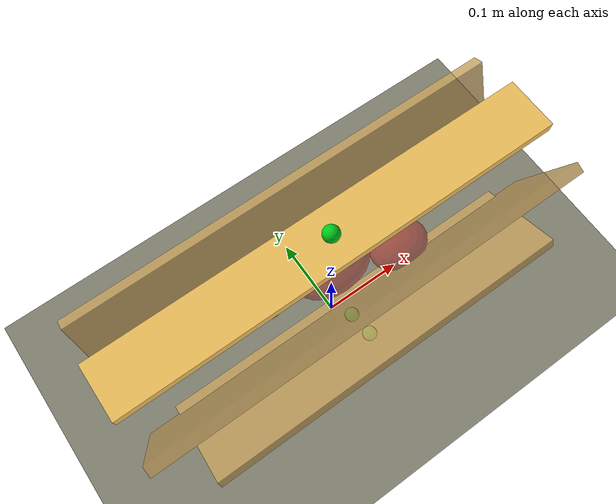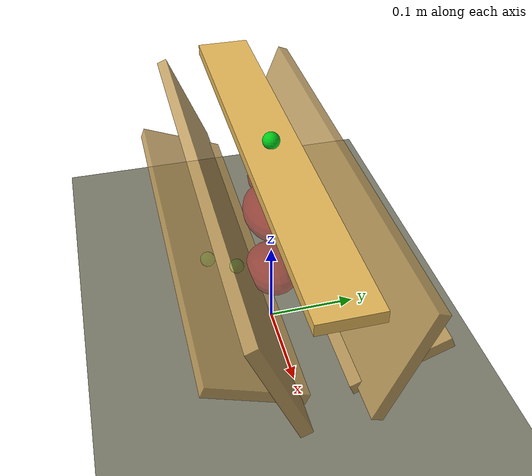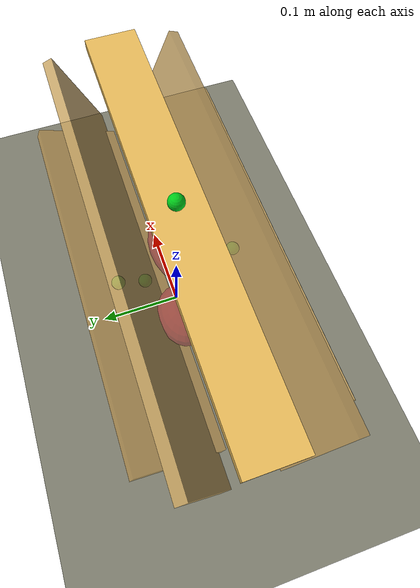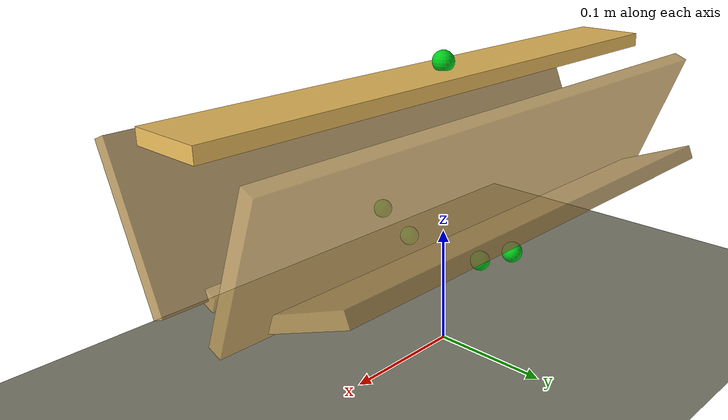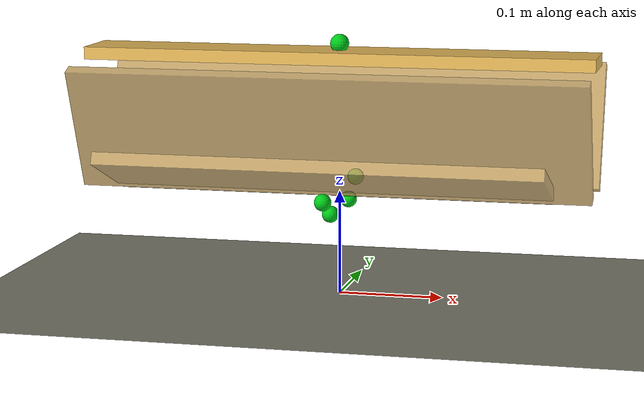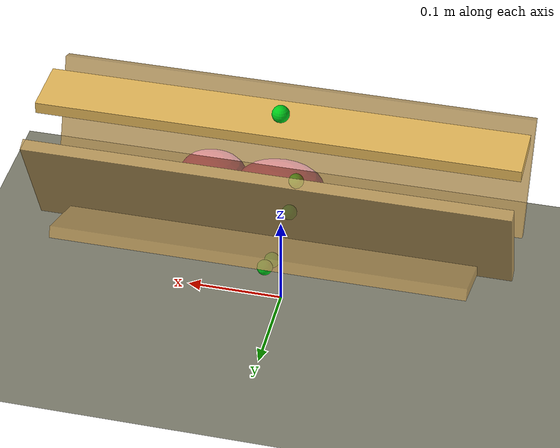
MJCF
<mujoco model="open_panel_joint_only">
  <compiler angle="degree" inertiafromgeom="true" autolimits="true"/>

  <option timestep="0.001" solver="Newton" iterations="80" tolerance="1e-9"
          cone="elliptic" impratio="5" noslip_iterations="1"/>

  <visual>
    <global azimuth="135" elevation="-25" offwidth="1280" offheight="720"/>
  </visual>

  <asset>
    <texture name="tex_floor" type="2d" builtin="checker" width="512" height="512"
             rgb1="0.72 0.72 0.68" rgb2="0.62 0.62 0.58"/>
    <material name="mat_floor" texture="tex_floor" texrepeat="3 3" rgba="0.75 0.75 0.70 1"/>
    <material name="mat_panel" rgba="0.78 0.64 0.38 0.86"/>
    <material name="mat_top" rgba="0.92 0.74 0.36 0.92"/>
    <material name="mat_hinge" rgba="1.0 0.55 0.05 1"/>
    <material name="mat_mass" rgba="0.78 0.10 0.08 0.45"/>
  </asset>

  <default>
    <geom condim="4" friction="1.0 0.04 0.004" solref="0.012 1" solimp="0.86 0.96 0.002"/>
    <joint damping="0.8" armature="0.002"/>
    <default class="panel">
      <geom type="box" material="mat_panel" density="260" contype="1" conaffinity="1"/>
      <joint type="hinge" limited="true" damping="1.1" stiffness="1.4" armature="0.003"/>
    </default>
    <default class="mass_slide">
      <joint type="slide" limited="true" damping="1.3" stiffness="0.2" armature="0.002"/>
      <geom type="ellipsoid" material="mat_mass" density="850" contype="1" conaffinity="1"/>
    </default>
  </default>

  <worldbody>
    <light name="key" pos="0 -1 1.5" dir="0.1 0.6 -1"/>
    <camera name="joint_demo_cam" pos="0.52 -0.82 0.42" xyaxes="0.83 0.55 0 -0.22 0.34 0.91"/>
    <camera name="front_joint_cam" pos="0 -0.82 0.21" xyaxes="1 0 0 0 0.18 0.98"/>
    <geom name="floor" type="plane" size="1.2 1.2 0.02" material="mat_floor"/>

    <body name="bag_frame" pos="0 0 0.165">
      <freejoint name="bag_frame_freejoint"/>

      <!-- 주황색 capsule은 hinge 축을 눈으로 확인하기 위한 debug carrier이다. -->
      <geom name="hinge_axis_top" type="capsule" fromto="-0.25 0 0.065 0.25 0 0.065"
            size="0.007" material="mat_hinge" contype="0" conaffinity="0" group="4"/>
      <geom name="hinge_axis_left_mid" type="capsule" fromto="-0.25 0.088 0.006 0.25 0.088 0.006"
            size="0.006" material="mat_hinge" contype="0" conaffinity="0" group="4"/>
      <geom name="hinge_axis_right_mid" type="capsule" fromto="-0.25 -0.088 0.006 0.25 -0.088 0.006"
            size="0.006" material="mat_hinge" contype="0" conaffinity="0" group="4"/>
      <geom name="hinge_axis_bottom" type="capsule" fromto="-0.21 0 -0.055 0.21 0 -0.055"
            size="0.006" material="mat_hinge" contype="0" conaffinity="0" group="4"/>

      <!-- 각 panel body는 bag_frame에 대한 hinge joint 하나만 가진다. -->
      <body name="top_panel" pos="0 0 0.065">
        <joint name="hinge_top_panel" class="panel" axis="1 0 0" range="-35 35" springref="0"/>
        <geom name="geom_top_panel" type="box" size="0.245 0.030 0.006" material="mat_top" mass="0.030"/>
        <site name="site_top_panel" pos="0 0 0.012" size="0.009" rgba="0 0.8 0.1 1"/>
      </body>

      <body name="left_side_panel" pos="0 0.038 0.058" euler="-22 0 0">
        <joint name="hinge_left_side_panel" class="panel" axis="1 0 0" range="-70 55" springref="0"/>
        <geom name="geom_left_side_panel" class="panel" pos="0 0.038 -0.050"
              size="0.245 0.006 0.062" mass="0.048"/>
        <site name="site_left_panel_tip" pos="0 0.076 -0.100" size="0.008" rgba="0 0.8 0.1 1"/>
      </body>

      <body name="right_side_panel" pos="0 -0.038 0.058" euler="22 0 0">
        <joint name="hinge_right_side_panel" class="panel" axis="1 0 0" range="-55 70" springref="0"/>
        <geom name="geom_right_side_panel" class="panel" pos="0 -0.038 -0.050"
              size="0.245 0.006 0.062" mass="0.048"/>
        <site name="site_right_panel_tip" pos="0 -0.076 -0.100" size="0.008" rgba="0 0.8 0.1 1"/>
      </body>

      <body name="left_bottom_panel" pos="0 0.094 -0.002" euler="-68 0 0">
        <joint name="hinge_left_bottom_panel" class="panel" axis="1 0 0" range="-60 65" springref="0"/>
        <geom name="geom_left_bottom_panel" class="panel" pos="0 0.026 -0.040"
              size="0.210 0.006 0.050" mass="0.043"/>
        <site name="site_left_bottom_tip" pos="0 0.052 -0.080" size="0.008" rgba="0 0.8 0.1 1"/>
      </body>

      <body name="right_bottom_panel" pos="0 -0.094 -0.002" euler="68 0 0">
        <joint name="hinge_right_bottom_panel" class="panel" axis="1 0 0" range="-65 60" springref="0"/>
        <geom name="geom_right_bottom_panel" class="panel" pos="0 -0.026 -0.040"
              size="0.210 0.006 0.050" mass="0.043"/>
        <site name="site_right_bottom_tip" pos="0 -0.052 -0.080" size="0.008" rgba="0 0.8 0.1 1"/>
      </body>

      <!-- 내부 clump는 DEM이 아니라 3개 coarse mass이다. -->
      <body name="hidden_mass_C" pos="0 0 -0.012">
        <joint name="hidden_mass_C_slide_x" class="mass_slide" axis="1 0 0" range="-0.12 0.12"/>
        <joint name="hidden_mass_C_slide_y" class="mass_slide" axis="0 1 0" range="-0.055 0.055"/>
        <joint name="hidden_mass_C_slide_z" class="mass_slide" axis="0 0 1" range="-0.050 0.025"/>
        <geom name="geom_hidden_mass_C" class="mass_slide" size="0.045 0.030 0.023" mass="0.16"/>
      </body>
      <body name="hidden_mass_L" pos="-0.075 0.018 -0.022">
        <joint name="hidden_mass_L_slide_x" class="mass_slide" axis="1 0 0" range="-0.055 0.080"/>
        <joint name="hidden_mass_L_slide_y" class="mass_slide" axis="0 1 0" range="-0.040 0.065"/>
        <joint name="hidden_mass_L_slide_z" class="mass_slide" axis="0 0 1" range="-0.045 0.025"/>
        <geom name="geom_hidden_mass_L" class="mass_slide" size="0.034 0.026 0.020" mass="0.095"/>
      </body>
      <body name="hidden_mass_R" pos="0.075 -0.018 -0.022">
        <joint name="hidden_mass_R_slide_x" class="mass_slide" axis="1 0 0" range="-0.080 0.055"/>
        <joint name="hidden_mass_R_slide_y" class="mass_slide" axis="0 1 0" range="-0.065 0.040"/>
        <joint name="hidden_mass_R_slide_z" class="mass_slide" axis="0 0 1" range="-0.045 0.025"/>
        <geom name="geom_hidden_mass_R" class="mass_slide" size="0.034 0.026 0.020" mass="0.095"/>
      </body>
    </body>
  </worldbody>

  <equality>
    <!-- 느슨한 edge coupling. panel이 따로 도망가지 않되 joint 회전은 보이도록 약하게 둔다. -->
    <connect name="connect_top_left_edge" body1="top_panel" body2="left_side_panel"
             anchor="0 0.038 0.223" solref="0.080 1" solimp="0.45 0.75 0.010"/>
    <connect name="connect_top_right_edge" body1="top_panel" body2="right_side_panel"
             anchor="0 -0.038 0.223" solref="0.080 1" solimp="0.45 0.75 0.010"/>
    <connect name="connect_left_lower_edge" body1="left_side_panel" body2="left_bottom_panel"
             anchor="0 0.094 0.163" solref="0.090 1" solimp="0.40 0.72 0.012"/>
    <connect name="connect_right_lower_edge" body1="right_side_panel" body2="right_bottom_panel"
             anchor="0 -0.094 0.163" solref="0.090 1" solimp="0.40 0.72 0.012"/>
    <connect name="connect_bottom_center_edge" body1="left_bottom_panel" body2="right_bottom_panel"
             anchor="0 0 0.110" solref="0.100 1" solimp="0.35 0.70 0.015"/>
  </equality>

  <actuator>
    <!-- ctrlrange는 runtime radian 기준이다. viewer control bar로 직접 흔들 수 있다. -->
    <position name="top_angle_act" joint="hinge_top_panel" kp="10" ctrllimited="true" ctrlrange="-0.45 0.45"/>
    <position name="left_side_angle_act" joint="hinge_left_side_panel" kp="12" ctrllimited="true" ctrlrange="-0.75 0.75"/>
    <position name="right_side_angle_act" joint="hinge_right_side_panel" kp="12" ctrllimited="true" ctrlrange="-0.75 0.75"/>
    <position name="left_bottom_angle_act" joint="hinge_left_bottom_panel" kp="10" ctrllimited="true" ctrlrange="-0.65 0.65"/>
    <position name="right_bottom_angle_act" joint="hinge_right_bottom_panel" kp="10" ctrllimited="true" ctrlrange="-0.65 0.65"/>
  </actuator>
</mujoco>
